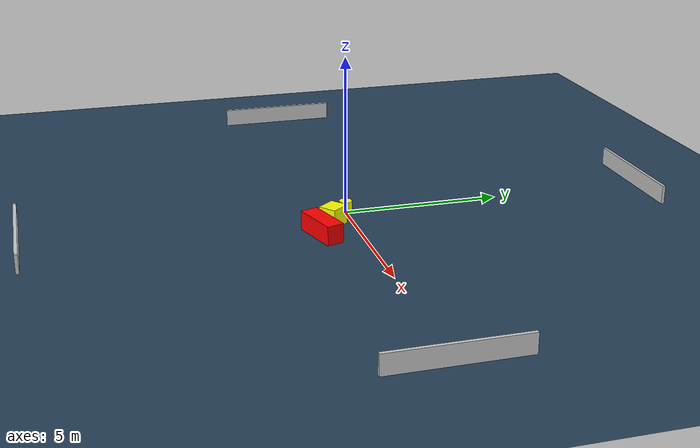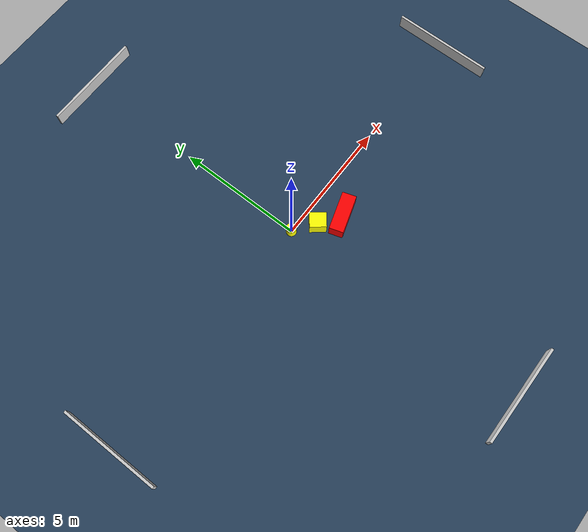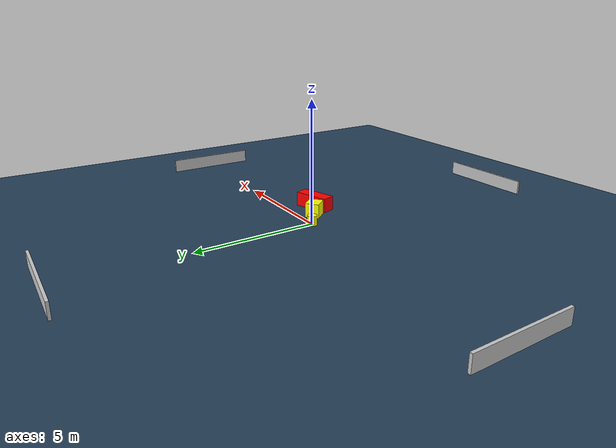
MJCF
<?xml version="1.0" ?>
<mujoco model="generated_environment">
  <option timestep="0.01" integrator="RK4" cone="elliptic"/>
  <default>
    <geom density="1"/>
  </default>
  <asset>
    <texture builtin="gradient" height="3072" name="skybox" rgb1="0.3 0.5 0.7" rgb2="0 0 0" type="skybox" width="512"/>
    <texture builtin="checker" height="300" name="groundplane" rgb1="0.2 0.3 0.4" rgb2="0.1 0.2 0.3" type="2d" width="300"/>
    <material name="groundplane" reflectance="0.2" texrepeat="5 5" texture="groundplane"/>
  </asset>
  <worldbody>
    <light dir="0 0 -1" directional="true" pos="0 0 1.5"/>
    <geom condim="3" friction="0.5 0.005 0.001" material="groundplane" name="floor" pos="0 0 0" size="0 0 0.05" type="plane"/>
    <body name="walls">
      <geom name="wall_1" condim="4" pos="-10.0 0.0 0.3" rgba="0.800000011920929 0.800000011920929 0.800000011920929 1.0" size="0.05 2.0 0.3" type="box"/>
      <geom name="wall_2" condim="4" pos="10.0 0.0 0.3" rgba="0.800000011920929 0.800000011920929 0.800000011920929 1.0" size="0.05 2.0 0.3" type="box"/>
      <geom name="wall_3" condim="4" pos="0.0 -10.0 0.3" rgba="0.800000011920929 0.800000011920929 0.800000011920929 1.0" size="2.0 0.05 0.3" type="box"/>
      <geom name="wall_4" condim="4" pos="0.0 10.0 0.3" rgba="0.800000011920929 0.800000011920929 0.800000011920929 1.0" size="2.0 0.05 0.3" type="box"/>
    </body>
    <body name="robot">
      <joint name="joint_x" type="slide" pos="0 0 0" axis="1 0 0"/>
      <joint name="joint_y" type="slide" pos="0 0 0" axis="0 1 0"/>
      <geom name="robot" type="cylinder" pos="0.0 0.0 0.2" size="0.2 0.2 0.0" mass="5.0" friction="1.0 0.005 0.0001" condim="4" rgba="1.0 1.0 0.0 1.0"/>
    </body>
    <body name="obstacle_1_movable">
      <geom name="obstacle_1_movable" condim="4" pos="0.8062818949694184 -0.6218088640105541 0.3" euler="0 0 128.89627607910788" friction="0.0 0.005 0.001" rgba="1.0 1.0 0.0 1.0" size="0.32192426623601905 0.2909298636444031 0.3" type="box" mass="0.1"/>
      <joint type="free"/>
    </body>
    <body name="obstacle_2_static">
      <geom name="obstacle_2_static" condim="4" pos="1.6098227376382699 -1.1754570722949604 0.3" euler="0 0 197.33497284320697" friction="0.0 0.005 0.001" rgba="1.0 0.0 0.0 1.0" size="0.7636561414225165 0.27731720832594153 0.3" type="box"/>
    </body>
  </worldbody>
  <actuator>
    <motor name="actuator_x" joint="joint_x" gear="1" ctrlrange="-1 1"/>
    <motor name="actuator_y" joint="joint_y" gear="1" ctrlrange="-1 1"/>
  </actuator>
</mujoco>
